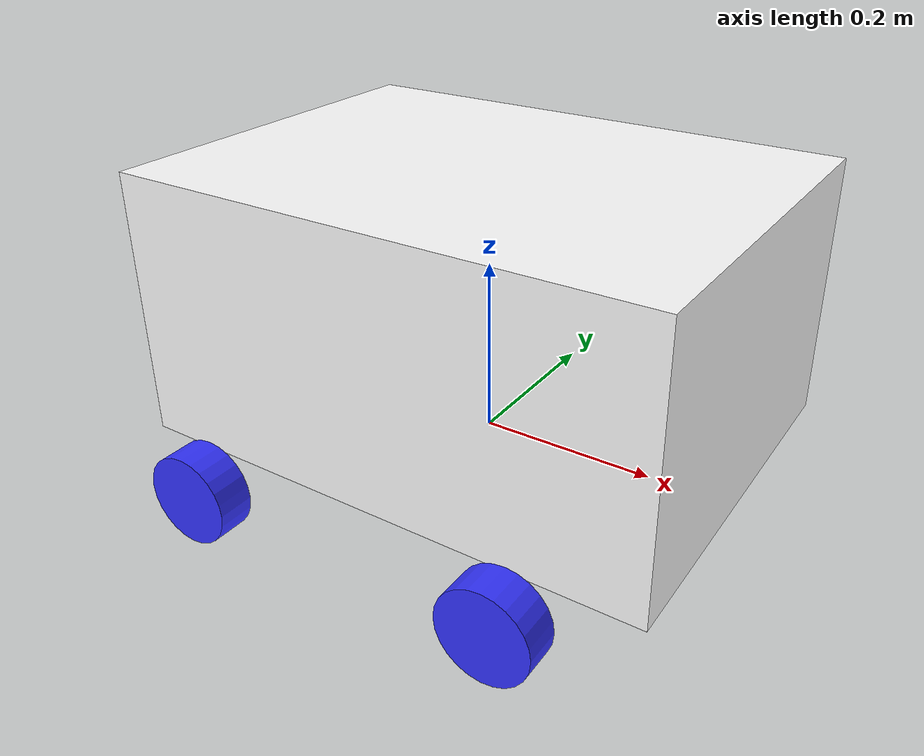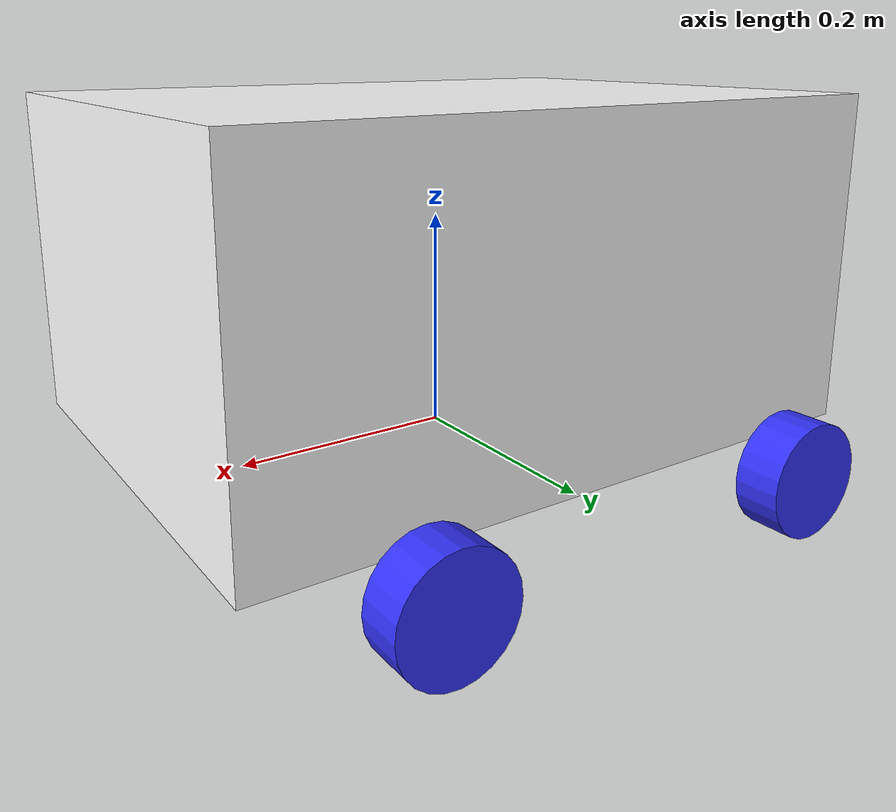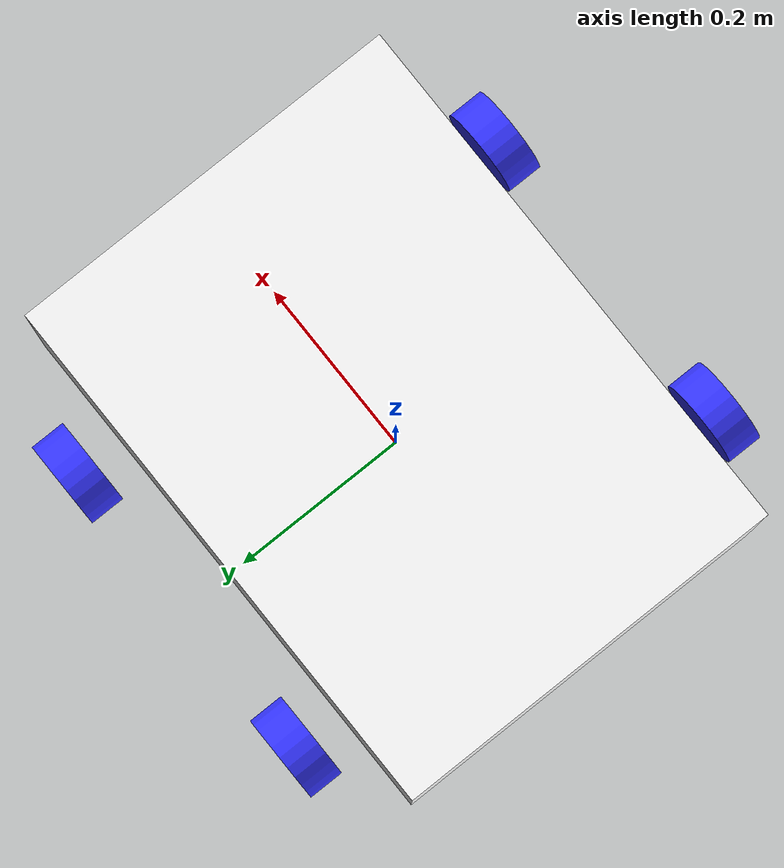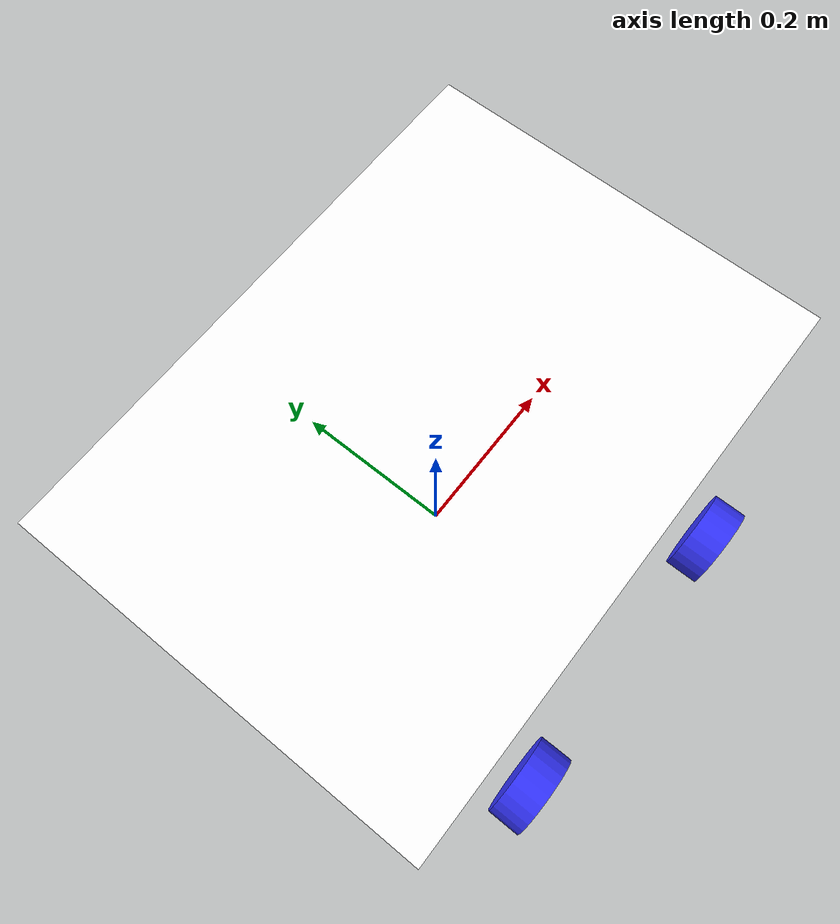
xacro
<?xml version="1.0"?>
<robot xmlns:xacro="http://www.ros.org/wiki/xacro" >

    <xacro:include filename="inertial_macros.xacro"/>

    <material name="white"><color rgba="1 1 1 1" /></material>
    <material name="blue"><color rgba="0.2 0.2 1 1"/></material>

    <!-- BASE LINK -->
    <link name="base_link"/>

    <!-- BASE_FOOTPRINT LINK -->

    <joint name="base_footprint_joint" type="fixed">
        <parent link="base_link"/>
        <child link="base_footprint"/>
        <origin xyz="0 0 0" rpy="0 0 0"/>
    </joint>

    <link name="base_footprint">
    </link>

    <joint name="chassis_joint" type="fixed">
        <parent link="base_link"/>
        <child link="chassis"/>
        <origin xyz="0 0 0.16"/>
    </joint>

    <link name="chassis">
        <visual>
            <geometry>
                <box size="0.6 0.44 0.3"/>
            </geometry>
            <material name="white"/>
        </visual>
        <collision>
            <geometry>
                <box size="0.6 0.44 0.3"/>
            </geometry>
        </collision>
        <xacro:inertial_box mass="3.0" x="0.6" y="0.44" z="0.3">
            <origin xyz="0 0 0" rpy="0 0 0"/>
        </xacro:inertial_box>
    </link>

    <gazebo reference="chassis">
        <material>Gazebo/White</material>
    </gazebo>

    <joint name="left_front_wheel_joint" type="continuous">
        <parent link="base_link"/>
        <child link="left_front_wheel"/>
        <origin xyz="0.18 0.275 0" rpy="-1.5707 0 0"/>
        <axis xyz="0 0 1"/>
    </joint>

    <link name="left_front_wheel">
        <visual>
            <geometry>
                <cylinder radius="0.05" length="0.04"/>
            </geometry>
            <material name="blue"/>
        </visual>
        <collision>
            <geometry>
                <cylinder radius="0.05" length="0.04"/>
            </geometry>
        </collision>
        <xacro:inertial_cylinder mass="0.2" length="0.04" radius="0.05">
            <origin xyz="0 0 0" rpy="0 0 0"/>
        </xacro:inertial_cylinder>
    </link>

    <gazebo reference="left_front_wheel">
        <material>Gazebo/Blue</material>
    </gazebo>

    <joint name="left_rear_wheel_joint" type="continuous">
        <parent link="base_link"/>
        <child link="left_rear_wheel"/>
        <origin xyz="-0.18 0.275 0" rpy="-1.5707 0 0"/>
        <axis xyz="0 0 1"/>
    </joint>

    <link name="left_rear_wheel">
        <visual>
            <geometry>
                <cylinder radius="0.05" length="0.04"/>
            </geometry>
            <material name="blue"/>
        </visual>
        <collision>
            <geometry>
                <cylinder radius="0.05" length="0.04"/>
            </geometry>
        </collision>
        <xacro:inertial_cylinder mass="0.2" length="0.04" radius="0.05">
            <origin xyz="0 0 0" rpy="0 0 0"/>
        </xacro:inertial_cylinder>
    </link>

    <gazebo reference="left_rear_wheel">
        <material>Gazebo/Blue</material>
        <mu1 value="0.001"/>
        <mu2 value="0.001"/>
    </gazebo>

    <joint name="right_front_wheel_joint" type="continuous">
        <parent link="base_link"/>
        <child link="right_front_wheel"/>
        <origin xyz="0.18 -0.275 0" rpy="1.5707 0 0"/>
        <axis xyz="0 0 -1"/>
    </joint>

    <link name="right_front_wheel">
        <visual>
            <geometry>
                <cylinder radius="0.05" length="0.04"/>
            </geometry>
            <material name="blue"/>
        </visual>
        <collision>
            <geometry>
                <cylinder radius="0.05" length="0.04"/>
            </geometry>
        </collision>
        <xacro:inertial_cylinder mass="0.2" length="0.04" radius="0.05">
            <origin xyz="0 0 0" rpy="0 0 0"/>
        </xacro:inertial_cylinder>
    </link>

    <gazebo reference="right_front_wheel">
        <material>Gazebo/Blue</material>
    </gazebo>

    <joint name="right_rear_wheel_joint" type="continuous">
        <parent link="base_link"/>
        <child link="right_rear_wheel"/>
        <origin xyz="-0.18 -0.275 0" rpy="1.5707 0 0"/>
        <axis xyz="0 0 -1"/>
    </joint>

    <link name="right_rear_wheel">
        <visual>
            <geometry>
                <cylinder radius="0.05" length="0.04"/>
            </geometry>
            <material name="blue"/>
        </visual>
        <collision>
            <geometry>
                <cylinder radius="0.05" length="0.04"/>
            </geometry>
        </collision>
        <xacro:inertial_cylinder mass="0.2" length="0.04" radius="0.05">
            <origin xyz="0 0 0" rpy="0 0 0"/>
        </xacro:inertial_cylinder>
    </link>

    <gazebo reference="right_rear_wheel">
        <material>Gazebo/Blue</material>
        <mu1 value="0.001"/>
        <mu2 value="0.001"/>
    </gazebo>

</robot>
